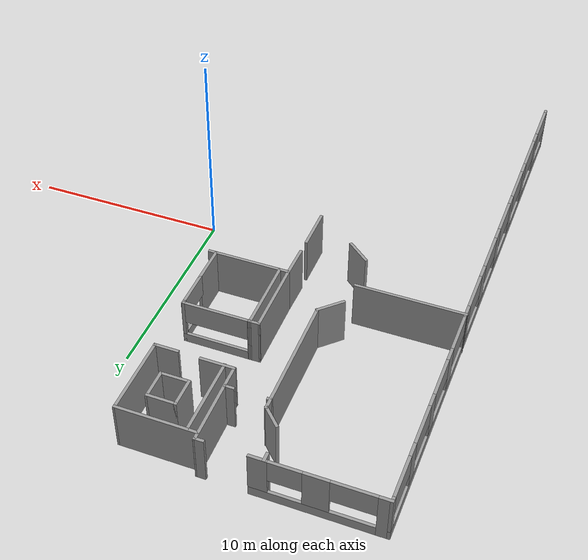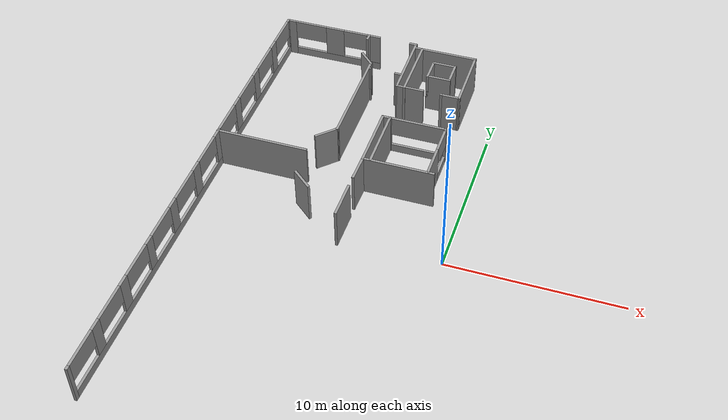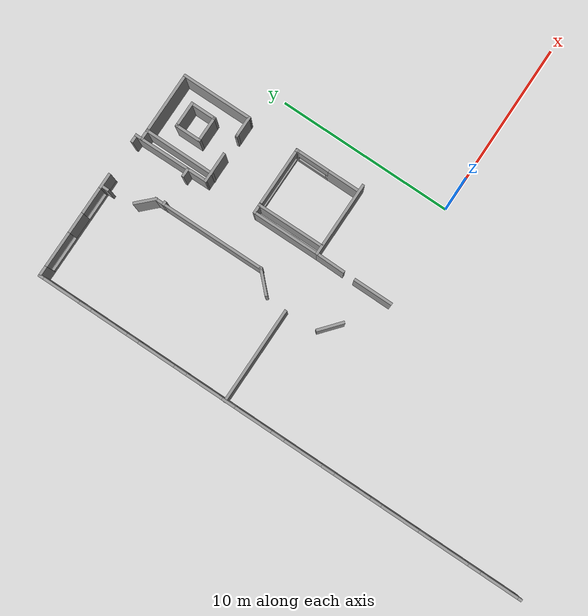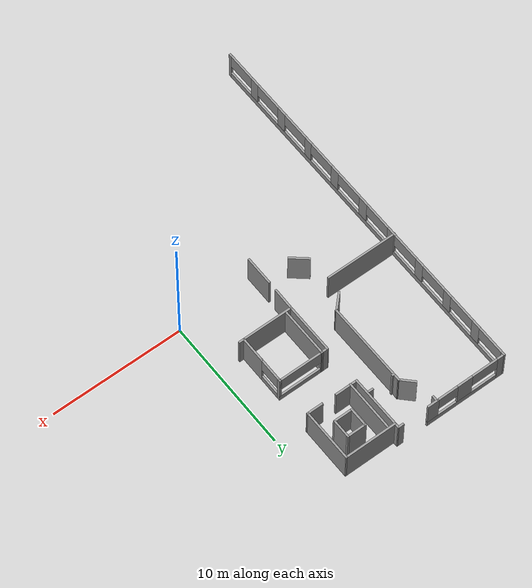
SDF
<sdf version="1.6">
 <model name="ca_vignal_1">
  <pose>-8.09627 -0.676503 0 0 -0 0</pose>
  <link name="Wall_0">
   <pose>-6.35164 1.29841 0 0 -0 1.5708</pose>
   <visual name="Wall_0_Visual_0">
    <pose>-14.2835 0 1.25 0 -0 0</pose>
    <geometry><box><size>0.235089 0.15 2.5</size></box></geometry>
    <material>
     <script><uri>file://media/materials/scripts/gazebo.material</uri><name>Gazebo/Grey</name></script>
     <ambient>1 1 1 1</ambient>
    </material>
   </visual>
   <collision name="Wall_0_Collision_0">
    <geometry><box><size>0.235089 0.15 2.5</size></box></geometry>
    <pose>-14.2835 0 1.25 0 -0 0</pose>
   </collision>
   <visual name="Wall_0_Visual_1">
    <pose>0.117544 0 0.25 0 -0 0</pose>
    <geometry><box><size>28.5671 0.15 0.5</size></box></geometry>
    <material>
     <script><uri>file://media/materials/scripts/gazebo.material</uri><name>Gazebo/Grey</name></script>
     <ambient>1 1 1 1</ambient>
    </material>
   </visual>
   <collision name="Wall_0_Collision_1">
    <geometry><box><size>28.5671 0.15 0.5</size></box></geometry>
    <pose>0.117544 0 0.25 0 -0 0</pose>
   </collision>
   <visual name="Wall_0_Visual_2">
    <pose>-11.5998 0 1.5 0 -0 0</pose>
    <geometry><box><size>0.716549 0.15 2</size></box></geometry>
    <material>
     <script><uri>file://media/materials/scripts/gazebo.material</uri><name>Gazebo/Grey</name></script>
     <ambient>1 1 1 1</ambient>
    </material>
   </visual>
   <collision name="Wall_0_Collision_2">
    <geometry><box><size>0.716549 0.15 2</size></box></geometry>
    <pose>-11.5998 0 1.5 0 -0 0</pose>
   </collision>
   <visual name="Wall_0_Visual_3">
    <pose>-8.68449 0 1.5 0 -0 0</pose>
    <geometry><box><size>0.738343 0.15 2</size></box></geometry>
    <material>
     <script><uri>file://media/materials/scripts/gazebo.material</uri><name>Gazebo/Grey</name></script>
     <ambient>1 1 1 1</ambient>
    </material>
   </visual>
   <collision name="Wall_0_Collision_3">
    <geometry><box><size>0.738343 0.15 2</size></box></geometry>
    <pose>-8.68449 0 1.5 0 -0 0</pose>
   </collision>
   <visual name="Wall_0_Visual_4">
    <pose>-5.79269 0 1.5 0 -0 0</pose>
    <geometry><box><size>0.646852 0.15 2</size></box></geometry>
    <material>
     <script><uri>file://media/materials/scripts/gazebo.material</uri><name>Gazebo/Grey</name></script>
     <ambient>1 1 1 1</ambient>
    </material>
   </visual>
   <collision name="Wall_0_Collision_4">
    <geometry><box><size>0.646852 0.15 2</size></box></geometry>
    <pose>-5.79269 0 1.5 0 -0 0</pose>
   </collision>
   <visual name="Wall_0_Visual_5">
    <pose>-2.9503 0 1.5 0 -0 0</pose>
    <geometry><box><size>0.744454 0.15 2</size></box></geometry>
    <material>
     <script><uri>file://media/materials/scripts/gazebo.material</uri><name>Gazebo/Grey</name></script>
     <ambient>1 1 1 1</ambient>
    </material>
   </visual>
   <collision name="Wall_0_Collision_5">
    <geometry><box><size>0.744454 0.15 2</size></box></geometry>
    <pose>-2.9503 0 1.5 0 -0 0</pose>
   </collision>
   <visual name="Wall_0_Visual_6">
    <pose>0.028378 0 1.5 0 -0 0</pose>
    <geometry><box><size>0.779514 0.15 2</size></box></geometry>
    <material>
     <script><uri>file://media/materials/scripts/gazebo.material</uri><name>Gazebo/Grey</name></script>
     <ambient>1 1 1 1</ambient>
    </material>
   </visual>
   <collision name="Wall_0_Collision_6">
    <geometry><box><size>0.779514 0.15 2</size></box></geometry>
    <pose>0.028378 0 1.5 0 -0 0</pose>
   </collision>
   <visual name="Wall_0_Visual_7">
    <pose>2.96332 0 1.5 0 -0 0</pose>
    <geometry><box><size>0.761928 0.15 2</size></box></geometry>
    <material>
     <script><uri>file://media/materials/scripts/gazebo.material</uri><name>Gazebo/Grey</name></script>
     <ambient>1 1 1 1</ambient>
    </material>
   </visual>
   <collision name="Wall_0_Collision_7">
    <geometry><box><size>0.761928 0.15 2</size></box></geometry>
    <pose>2.96332 0 1.5 0 -0 0</pose>
   </collision>
   <visual name="Wall_0_Visual_8">
    <pose>5.85759 0 1.5 0 -0 0</pose>
    <geometry><box><size>0.733132 0.15 2</size></box></geometry>
    <material>
     <script><uri>file://media/materials/scripts/gazebo.material</uri><name>Gazebo/Grey</name></script>
     <ambient>1 1 1 1</ambient>
    </material>
   </visual>
   <collision name="Wall_0_Collision_8">
    <geometry><box><size>0.733132 0.15 2</size></box></geometry>
    <pose>5.85759 0 1.5 0 -0 0</pose>
   </collision>
   <visual name="Wall_0_Visual_9">
    <pose>8.71919 0 1.5 0 -0 0</pose>
    <geometry><box><size>0.696864 0.15 2</size></box></geometry>
    <material>
     <script><uri>file://media/materials/scripts/gazebo.material</uri><name>Gazebo/Grey</name></script>
     <ambient>1 1 1 1</ambient>
    </material>
   </visual>
   <collision name="Wall_0_Collision_9">
    <geometry><box><size>0.696864 0.15 2</size></box></geometry>
    <pose>8.71919 0 1.5 0 -0 0</pose>
   </collision>
   <visual name="Wall_0_Visual_10">
    <pose>11.5805 0 1.5 0 -0 0</pose>
    <geometry><box><size>0.718517 0.15 2</size></box></geometry>
    <material>
     <script><uri>file://media/materials/scripts/gazebo.material</uri><name>Gazebo/Grey</name></script>
     <ambient>1 1 1 1</ambient>
    </material>
   </visual>
   <collision name="Wall_0_Collision_10">
    <geometry><box><size>0.718517 0.15 2</size></box></geometry>
    <pose>11.5805 0 1.5 0 -0 0</pose>
   </collision>
   <visual name="Wall_0_Visual_11">
    <pose>14.2472 0 1.5 0 -0 0</pose>
    <geometry><box><size>0.30779 0.15 2</size></box></geometry>
    <material>
     <script><uri>file://media/materials/scripts/gazebo.material</uri><name>Gazebo/Grey</name></script>
     <ambient>1 1 1 1</ambient>
    </material>
   </visual>
   <collision name="Wall_0_Collision_11">
    <geometry><box><size>0.30779 0.15 2</size></box></geometry>
    <pose>14.2472 0 1.5 0 -0 0</pose>
   </collision>
   <visual name="Wall_0_Visual_12">
    <pose>-13.062 0 1.9 0 -0 0</pose>
    <geometry><box><size>2.20795 0.15 1.2</size></box></geometry>
    <material>
     <script><uri>file://media/materials/scripts/gazebo.material</uri><name>Gazebo/Grey</name></script>
     <ambient>1 1 1 1</ambient>
    </material>
   </visual>
   <collision name="Wall_0_Collision_12">
    <geometry><box><size>2.20795 0.15 1.2</size></box></geometry>
    <pose>-13.062 0 1.9 0 -0 0</pose>
   </collision>
   <visual name="Wall_0_Visual_13">
    <pose>-10.1476 0 1.9 0 -0 0</pose>
    <geometry><box><size>2.18784 0.15 1.2</size></box></geometry>
    <material>
     <script><uri>file://media/materials/scripts/gazebo.material</uri><name>Gazebo/Grey</name></script>
     <ambient>1 1 1 1</ambient>
    </material>
   </visual>
   <collision name="Wall_0_Collision_13">
    <geometry><box><size>2.18784 0.15 1.2</size></box></geometry>
    <pose>-10.1476 0 1.9 0 -0 0</pose>
   </collision>
   <visual name="Wall_0_Visual_14">
    <pose>-7.21572 0 1.9 0 -0 0</pose>
    <geometry><box><size>2.19921 0.15 1.2</size></box></geometry>
    <material>
     <script><uri>file://media/materials/scripts/gazebo.material</uri><name>Gazebo/Grey</name></script>
     <ambient>1 1 1 1</ambient>
    </material>
   </visual>
   <collision name="Wall_0_Collision_14">
    <geometry><box><size>2.19921 0.15 1.2</size></box></geometry>
    <pose>-7.21572 0 1.9 0 -0 0</pose>
   </collision>
   <visual name="Wall_0_Visual_15">
    <pose>-4.3959 0 1.9 0 -0 0</pose>
    <geometry><box><size>2.14674 0.15 1.2</size></box></geometry>
    <material>
     <script><uri>file://media/materials/scripts/gazebo.material</uri><name>Gazebo/Grey</name></script>
     <ambient>1 1 1 1</ambient>
    </material>
   </visual>
   <collision name="Wall_0_Collision_15">
    <geometry><box><size>2.14674 0.15 1.2</size></box></geometry>
    <pose>-4.3959 0 1.9 0 -0 0</pose>
   </collision>
   <visual name="Wall_0_Visual_16">
    <pose>-1.46973 0 1.9 0 -0 0</pose>
    <geometry><box><size>2.2167 0.15 1.2</size></box></geometry>
    <material>
     <script><uri>file://media/materials/scripts/gazebo.material</uri><name>Gazebo/Grey</name></script>
     <ambient>1 1 1 1</ambient>
    </material>
   </visual>
   <collision name="Wall_0_Collision_16">
    <geometry><box><size>2.2167 0.15 1.2</size></box></geometry>
    <pose>-1.46973 0 1.9 0 -0 0</pose>
   </collision>
   <visual name="Wall_0_Visual_17">
    <pose>1.50025 0 1.9 0 -0 0</pose>
    <geometry><box><size>2.16423 0.15 1.2</size></box></geometry>
    <material>
     <script><uri>file://media/materials/scripts/gazebo.material</uri><name>Gazebo/Grey</name></script>
     <ambient>1 1 1 1</ambient>
    </material>
   </visual>
   <collision name="Wall_0_Collision_17">
    <geometry><box><size>2.16423 0.15 1.2</size></box></geometry>
    <pose>1.50025 0 1.9 0 -0 0</pose>
   </collision>
   <visual name="Wall_0_Visual_18">
    <pose>4.41765 0 1.9 0 -0 0</pose>
    <geometry><box><size>2.14674 0.15 1.2</size></box></geometry>
    <material>
     <script><uri>file://media/materials/scripts/gazebo.material</uri><name>Gazebo/Grey</name></script>
     <ambient>1 1 1 1</ambient>
    </material>
   </visual>
   <collision name="Wall_0_Collision_18">
    <geometry><box><size>2.14674 0.15 1.2</size></box></geometry>
    <pose>4.41765 0 1.9 0 -0 0</pose>
   </collision>
   <visual name="Wall_0_Visual_19">
    <pose>7.29746 0 1.9 0 -0 0</pose>
    <geometry><box><size>2.1466 0.15 1.2</size></box></geometry>
    <material>
     <script><uri>file://media/materials/scripts/gazebo.material</uri><name>Gazebo/Grey</name></script>
     <ambient>1 1 1 1</ambient>
    </material>
   </visual>
   <collision name="Wall_0_Collision_19">
    <geometry><box><size>2.1466 0.15 1.2</size></box></geometry>
    <pose>7.29746 0 1.9 0 -0 0</pose>
   </collision>
   <visual name="Wall_0_Visual_20">
    <pose>10.1444 0 1.9 0 -0 0</pose>
    <geometry><box><size>2.15358 0.15 1.2</size></box></geometry>
    <material>
     <script><uri>file://media/materials/scripts/gazebo.material</uri><name>Gazebo/Grey</name></script>
     <ambient>1 1 1 1</ambient>
    </material>
   </visual>
   <collision name="Wall_0_Collision_20">
    <geometry><box><size>2.15358 0.15 1.2</size></box></geometry>
    <pose>10.1444 0 1.9 0 -0 0</pose>
   </collision>
   <visual name="Wall_0_Visual_21">
    <pose>13.0165 0 1.9 0 -0 0</pose>
    <geometry><box><size>2.15358 0.15 1.2</size></box></geometry>
    <material>
     <script><uri>file://media/materials/scripts/gazebo.material</uri><name>Gazebo/Grey</name></script>
     <ambient>1 1 1 1</ambient>
    </material>
   </visual>
   <collision name="Wall_0_Collision_21">
    <geometry><box><size>2.15358 0.15 1.2</size></box></geometry>
    <pose>13.0165 0 1.9 0 -0 0</pose>
   </collision>
  </link>
  <link name="Wall_10">
   <collision name="Wall_10_Collision">
    <geometry><box><size>1.49437 0.15 2.5</size></box></geometry>
    <pose>0 0 1.25 0 -0 0</pose>
   </collision>
   <visual name="Wall_10_Visual">
    <pose>0 0 1.25 0 -0 0</pose>
    <geometry><box><size>1.49437 0.15 2.5</size></box></geometry>
    <material>
     <script><uri>file://media/materials/scripts/gazebo.material</uri><name>Gazebo/Grey</name></script>
     <ambient>1 1 1 1</ambient>
    </material>
   </visual>
   <pose>-0.384063 2.18943 0 0 -0 2.44358</pose>
  </link>
  <link name="Wall_18">
   <collision name="Wall_18_Collision">
    <geometry><box><size>0.5 0.15 2.5</size></box></geometry>
    <pose>0 0 1.25 0 -0 0</pose>
   </collision>
   <visual name="Wall_18_Visual">
    <pose>0 0 1.25 0 -0 0</pose>
    <geometry><box><size>0.5 0.15 2.5</size></box></geometry>
    <material>
     <script><uri>file://media/materials/scripts/gazebo.material</uri><name>Gazebo/Grey</name></script>
     <ambient>1 1 1 1</ambient>
    </material>
   </visual>
   <pose>1.99078 15.6193 0 0 -0 0</pose>
  </link>
  <link name="Wall_19">
   <collision name="Wall_19_Collision">
    <geometry><box><size>4.33031 0.15 2.5</size></box></geometry>
    <pose>0 0 1.25 0 -0 0</pose>
   </collision>
   <visual name="Wall_19_Visual">
    <pose>0 0 1.25 0 -0 0</pose>
    <geometry><box><size>4.33031 0.15 2.5</size></box></geometry>
    <material>
     <script><uri>file://media/materials/scripts/gazebo.material</uri><name>Gazebo/Grey</name></script>
     <ambient>1 1 1 1</ambient>
    </material>
   </visual>
   <pose>2.1855 13.5292 0 0 0 -1.56136</pose>
  </link>
  <link name="Wall_2">
   <pose>-3.30164 15.6245 0 0 -0 0</pose>
   <visual name="Wall_2_Visual_0">
    <pose>-2.81084 0 1.25 0 -0 0</pose>
    <geometry><box><size>0.628319 0.15 2.5</size></box></geometry>
    <material>
     <script><uri>file://media/materials/scripts/gazebo.material</uri><name>Gazebo/Grey</name></script>
     <ambient>1 1 1 1</ambient>
    </material>
   </visual>
   <collision name="Wall_2_Collision_0">
    <geometry><box><size>0.628319 0.15 2.5</size></box></geometry>
    <pose>-2.81084 0 1.25 0 -0 0</pose>
   </collision>
   <visual name="Wall_2_Visual_1">
    <pose>0.31416 0 0.25 0 -0 0</pose>
    <geometry><box><size>5.62168 0.15 0.5</size></box></geometry>
    <material>
     <script><uri>file://media/materials/scripts/gazebo.material</uri><name>Gazebo/Grey</name></script>
     <ambient>1 1 1 1</ambient>
    </material>
   </visual>
   <collision name="Wall_2_Collision_1">
    <geometry><box><size>5.62168 0.15 0.5</size></box></geometry>
    <pose>0.31416 0 0.25 0 -0 0</pose>
   </collision>
   <visual name="Wall_2_Visual_2">
    <pose>0.127976 0 1.5 0 -0 0</pose>
    <geometry><box><size>1.18537 0.15 2</size></box></geometry>
    <material>
     <script><uri>file://media/materials/scripts/gazebo.material</uri><name>Gazebo/Grey</name></script>
     <ambient>1 1 1 1</ambient>
    </material>
   </visual>
   <collision name="Wall_2_Collision_2">
    <geometry><box><size>1.18537 0.15 2</size></box></geometry>
    <pose>0.127976 0 1.5 0 -0 0</pose>
   </collision>
   <visual name="Wall_2_Visual_3">
    <pose>2.68462 0 1.5 0 -0 0</pose>
    <geometry><box><size>0.880764 0.15 2</size></box></geometry>
    <material>
     <script><uri>file://media/materials/scripts/gazebo.material</uri><name>Gazebo/Grey</name></script>
     <ambient>1 1 1 1</ambient>
    </material>
   </visual>
   <collision name="Wall_2_Collision_3">
    <geometry><box><size>0.880764 0.15 2</size></box></geometry>
    <pose>2.68462 0 1.5 0 -0 0</pose>
   </collision>
   <visual name="Wall_2_Visual_4">
    <pose>-1.4807 0 1.9 0 -0 0</pose>
    <geometry><box><size>2.03197 0.15 1.2</size></box></geometry>
    <material>
     <script><uri>file://media/materials/scripts/gazebo.material</uri><name>Gazebo/Grey</name></script>
     <ambient>1 1 1 1</ambient>
    </material>
   </visual>
   <collision name="Wall_2_Collision_4">
    <geometry><box><size>2.03197 0.15 1.2</size></box></geometry>
    <pose>-1.4807 0 1.9 0 -0 0</pose>
   </collision>
   <visual name="Wall_2_Visual_5">
    <pose>1.48245 0 1.9 0 -0 0</pose>
    <geometry><box><size>1.52357 0.15 1.2</size></box></geometry>
    <material>
     <script><uri>file://media/materials/scripts/gazebo.material</uri><name>Gazebo/Grey</name></script>
     <ambient>1 1 1 1</ambient>
    </material>
   </visual>
   <collision name="Wall_2_Collision_5">
    <geometry><box><size>1.52357 0.15 1.2</size></box></geometry>
    <pose>1.48245 0 1.9 0 -0 0</pose>
   </collision>
  </link>
  <link name="Wall_20">
   <collision name="Wall_20_Collision">
    <geometry><box><size>1.75 0.15 2.5</size></box></geometry>
    <pose>0 0 1.25 0 -0 0</pose>
   </collision>
   <visual name="Wall_20_Visual">
    <pose>0 0 1.25 0 -0 0</pose>
    <geometry><box><size>1.75 0.15 2.5</size></box></geometry>
    <material>
     <script><uri>file://media/materials/scripts/gazebo.material</uri><name>Gazebo/Grey</name></script>
     <ambient>1 1 1 1</ambient>
    </material>
   </visual>
   <pose>3.00523 11.4392 0 0 -0 0</pose>
  </link>
  <link name="Wall_22">
   <collision name="Wall_22_Collision">
    <geometry><box><size>4 0.15 2.5</size></box></geometry>
    <pose>0 0 1.25 0 -0 0</pose>
   </collision>
   <visual name="Wall_22_Visual">
    <pose>0 0 1.25 0 -0 0</pose>
    <geometry><box><size>4 0.15 2.5</size></box></geometry>
    <material>
     <script><uri>file://media/materials/scripts/gazebo.material</uri><name>Gazebo/Grey</name></script>
     <ambient>1 1 1 1</ambient>
    </material>
   </visual>
   <pose>4.12078 15.2971 0 0 -0 0</pose>
  </link>
  <link name="Wall_23">
   <collision name="Wall_23_Collision">
    <geometry><box><size>4.02639 0.15 2.5</size></box></geometry>
    <pose>0 0 1.25 0 -0 0</pose>
   </collision>
   <visual name="Wall_23_Visual">
    <pose>0 0 1.25 0 -0 0</pose>
    <geometry><box><size>4.02639 0.15 2.5</size></box></geometry>
    <material>
     <script><uri>file://media/materials/scripts/gazebo.material</uri><name>Gazebo/Grey</name></script>
     <ambient>1 1 1 1</ambient>
    </material>
   </visual>
   <pose>6.05235 13.359 0 0 0 -1.5674</pose>
  </link>
  <link name="Wall_24">
   <collision name="Wall_24_Collision">
    <geometry><box><size>1.25 0.15 2.5</size></box></geometry>
    <pose>0 0 1.25 0 -0 0</pose>
   </collision>
   <visual name="Wall_24_Visual">
    <pose>0 0 1.25 0 -0 0</pose>
    <geometry><box><size>1.25 0.15 2.5</size></box></geometry>
    <material>
     <script><uri>file://media/materials/scripts/gazebo.material</uri><name>Gazebo/Grey</name></script>
     <ambient>1 1 1 1</ambient>
    </material>
   </visual>
   <pose>5.50893 11.4208 0 0 -0 3.14159</pose>
  </link>
  <link name="Wall_25">
   <collision name="Wall_25_Collision">
    <geometry><box><size>0.15 0.15 2.5</size></box></geometry>
    <pose>0 0 1.25 0 -0 0</pose>
   </collision>
   <visual name="Wall_25_Visual">
    <pose>0 0 1.25 0 -0 0</pose>
    <geometry><box><size>0.15 0.15 2.5</size></box></geometry>
    <material>
     <script><uri>file://media/materials/scripts/gazebo.material</uri><name>Gazebo/Grey</name></script>
     <ambient>1 1 1 1</ambient>
    </material>
   </visual>
   <pose>4.95893 11.4208 0 0 -0 0</pose>
  </link>
  <link name="Wall_27">
   <collision name="Wall_27_Collision">
    <geometry><box><size>0.5 0.15 2.5</size></box></geometry>
    <pose>0 0 1.25 0 -0 0</pose>
   </collision>
   <visual name="Wall_27_Visual">
    <pose>0 0 1.25 0 -0 0</pose>
    <geometry><box><size>0.5 0.15 2.5</size></box></geometry>
    <material>
     <script><uri>file://media/materials/scripts/gazebo.material</uri><name>Gazebo/Grey</name></script>
     <ambient>1 1 1 1</ambient>
    </material>
   </visual>
   <pose>1.97078 12.5171 0 0 -0 0</pose>
  </link>
  <link name="Wall_30">
   <collision name="Wall_30_Collision">
    <geometry><box><size>4 0.15 2.5</size></box></geometry>
    <pose>0 0 1.25 0 -0 0</pose>
   </collision>
   <visual name="Wall_30_Visual">
    <pose>0 0 1.25 0 -0 0</pose>
    <geometry><box><size>4 0.15 2.5</size></box></geometry>
    <material>
     <script><uri>file://media/materials/scripts/gazebo.material</uri><name>Gazebo/Grey</name></script>
     <ambient>1 1 1 1</ambient>
    </material>
   </visual>
   <pose>2.67311 13.3434 0 0 0 -1.5708</pose>
  </link>
  <link name="Wall_35">
   <collision name="Wall_35_Collision">
    <geometry><box><size>1.5 0.15 2.5</size></box></geometry>
    <pose>0 0 1.25 0 -0 0</pose>
   </collision>
   <visual name="Wall_35_Visual">
    <pose>0 0 1.25 0 -0 0</pose>
    <geometry><box><size>1.5 0.15 2.5</size></box></geometry>
    <material>
     <script><uri>file://media/materials/scripts/gazebo.material</uri><name>Gazebo/Grey</name></script>
     <ambient>1 1 1 1</ambient>
    </material>
   </visual>
   <pose>4.38699 12.8619 0 0 -0 0</pose>
  </link>
  <link name="Wall_36">
   <collision name="Wall_36_Collision">
    <geometry><box><size>1.5 0.15 2.5</size></box></geometry>
    <pose>0 0 1.25 0 -0 0</pose>
   </collision>
   <visual name="Wall_36_Visual">
    <pose>0 0 1.25 0 -0 0</pose>
    <geometry><box><size>1.5 0.15 2.5</size></box></geometry>
    <material>
     <script><uri>file://media/materials/scripts/gazebo.material</uri><name>Gazebo/Grey</name></script>
     <ambient>1 1 1 1</ambient>
    </material>
   </visual>
   <pose>5.06198 13.5369 0 0 -0 1.5708</pose>
  </link>
  <link name="Wall_37">
   <collision name="Wall_37_Collision">
    <geometry><box><size>1.5 0.15 2.5</size></box></geometry>
    <pose>0 0 1.25 0 -0 0</pose>
   </collision>
   <visual name="Wall_37_Visual">
    <pose>0 0 1.25 0 -0 0</pose>
    <geometry><box><size>1.5 0.15 2.5</size></box></geometry>
    <material>
     <script><uri>file://media/materials/scripts/gazebo.material</uri><name>Gazebo/Grey</name></script>
     <ambient>1 1 1 1</ambient>
    </material>
   </visual>
   <pose>4.38699 14.2119 0 0 -0 3.14159</pose>
  </link>
  <link name="Wall_38">
   <collision name="Wall_38_Collision">
    <geometry><box><size>1.5 0.15 2.5</size></box></geometry>
    <pose>0 0 1.25 0 -0 0</pose>
   </collision>
   <visual name="Wall_38_Visual">
    <pose>0 0 1.25 0 -0 0</pose>
    <geometry><box><size>1.5 0.15 2.5</size></box></geometry>
    <material>
     <script><uri>file://media/materials/scripts/gazebo.material</uri><name>Gazebo/Grey</name></script>
     <ambient>1 1 1 1</ambient>
    </material>
   </visual>
   <pose>3.71198 13.5369 0 0 0 -1.5708</pose>
  </link>
  <link name="Wall_4">
   <collision name="Wall_4_Collision">
    <geometry><box><size>1.25 0.15 2.5</size></box></geometry>
    <pose>0 0 1.25 0 -0 0</pose>
   </collision>
   <visual name="Wall_4_Visual">
    <pose>0 0 1.25 0 -0 0</pose>
    <geometry><box><size>1.25 0.15 2.5</size></box></geometry>
    <material>
     <script><uri>file://media/materials/scripts/gazebo.material</uri><name>Gazebo/Grey</name></script>
     <ambient>1 1 1 1</ambient>
    </material>
   </visual>
   <pose>-0.335232 13.3814 0 0 0 -0.785398</pose>
  </link>
  <link name="Wall_40">
   <collision name="Wall_40_Collision">
    <geometry><box><size>0.25 0.15 2.5</size></box></geometry>
    <pose>0 0 1.25 0 -0 0</pose>
   </collision>
   <visual name="Wall_40_Visual">
    <pose>0 0 1.25 0 -0 0</pose>
    <geometry><box><size>0.25 0.15 2.5</size></box></geometry>
    <material>
     <script><uri>file://media/materials/scripts/gazebo.material</uri><name>Gazebo/Grey</name></script>
     <ambient>1 1 1 1</ambient>
    </material>
   </visual>
   <pose>0.104599 12.5173 0 0 -0 0</pose>
  </link>
  <link name="Wall_42">
   <collision name="Wall_42_Collision">
    <geometry><box><size>5.5 0.15 2.5</size></box></geometry>
    <pose>0 0 1.25 0 -0 0</pose>
   </collision>
   <visual name="Wall_42_Visual">
    <pose>0 0 1.25 0 -0 0</pose>
    <geometry><box><size>5.5 0.15 2.5</size></box></geometry>
    <material>
     <script><uri>file://media/materials/scripts/gazebo.material</uri><name>Gazebo/Grey</name></script>
     <ambient>1 1 1 1</ambient>
    </material>
   </visual>
   <pose>-3.69472 4.47149 0 0 -0 0</pose>
  </link>
  <link name="Wall_49">
   <collision name="Wall_49_Collision">
    <geometry><box><size>0.5 0.15 2.5</size></box></geometry>
    <pose>0 0 1.25 0 -0 0</pose>
   </collision>
   <visual name="Wall_49_Visual">
    <pose>0 0 1.25 0 -0 0</pose>
    <geometry><box><size>0.5 0.15 2.5</size></box></geometry>
    <material>
     <script><uri>file://media/materials/scripts/gazebo.material</uri><name>Gazebo/Grey</name></script>
     <ambient>1 1 1 1</ambient>
    </material>
   </visual>
   <pose>-0.910063 15.4437 0 0 0 -1.5708</pose>
  </link>
  <link name="Wall_5">
   <collision name="Wall_5_Collision">
    <geometry><box><size>6.45648 0.15 2.5</size></box></geometry>
    <pose>0 0 1.25 0 -0 0</pose>
   </collision>
   <visual name="Wall_5_Visual">
    <pose>0 0 1.25 0 -0 0</pose>
    <geometry><box><size>6.45648 0.15 2.5</size></box></geometry>
    <material>
     <script><uri>file://media/materials/scripts/gazebo.material</uri><name>Gazebo/Grey</name></script>
     <ambient>1 1 1 1</ambient>
    </material>
   </visual>
   <pose>0.072558 9.83935 0 0 0 -1.56481</pose>
  </link>
  <link name="Wall_51">
   <collision name="Wall_51_Collision">
    <geometry><box><size>4.25 0.15 2.5</size></box></geometry>
    <pose>0 0 1.25 0 -0 0</pose>
   </collision>
   <visual name="Wall_51_Visual">
    <pose>0 0 1.25 0 -0 0</pose>
    <geometry><box><size>4.25 0.15 2.5</size></box></geometry>
    <material>
     <script><uri>file://media/materials/scripts/gazebo.material</uri><name>Gazebo/Grey</name></script>
     <ambient>1 1 1 1</ambient>
    </material>
   </visual>
   <pose>4.31972 4.76695 0 0 -0 0</pose>
  </link>
  <link name="Wall_54">
   <collision name="Wall_54_Collision">
    <geometry><box><size>3.851 0.15 2.5</size></box></geometry>
    <pose>0 0 1.25 0 -0 0</pose>
   </collision>
   <visual name="Wall_54_Visual">
    <pose>0 0 1.25 0 -0 0</pose>
    <geometry><box><size>3.851 0.15 2.5</size></box></geometry>
    <material>
     <script><uri>file://media/materials/scripts/gazebo.material</uri><name>Gazebo/Grey</name></script>
     <ambient>1 1 1 1</ambient>
    </material>
   </visual>
   <pose>2.6998 6.66167 0 0 -0 1.5762</pose>
  </link>
  <link name="Wall_55">
   <collision name="Wall_55_Collision">
    <geometry><box><size>0.585889 0.15 2.5</size></box></geometry>
    <pose>0 0 1.25 0 -0 0</pose>
   </collision>
   <visual name="Wall_55_Visual">
    <pose>0 0 1.25 0 -0 0</pose>
    <geometry><box><size>0.585889 0.15 2.5</size></box></geometry>
    <material>
     <script><uri>file://media/materials/scripts/gazebo.material</uri><name>Gazebo/Grey</name></script>
     <ambient>1 1 1 1</ambient>
    </material>
   </visual>
   <pose>2.47189 8.50823 0 0 0 -3.12351</pose>
  </link>
  <link name="Wall_56">
   <collision name="Wall_56_Collision">
    <geometry><box><size>3.88734 0.15 2.5</size></box></geometry>
    <pose>0 0 1.25 0 -0 0</pose>
   </collision>
   <visual name="Wall_56_Visual">
    <pose>0 0 1.25 0 -0 0</pose>
    <geometry><box><size>3.88734 0.15 2.5</size></box></geometry>
    <material>
     <script><uri>file://media/materials/scripts/gazebo.material</uri><name>Gazebo/Grey</name></script>
     <ambient>1 1 1 1</ambient>
    </material>
   </visual>
   <pose>2.26185 6.63562 0 0 0 -1.56659</pose>
  </link>
  <link name="Wall_58">
   <pose>4.3648 8.51217 0 0 -0 0</pose>
   <visual name="Wall_58_Visual_0">
    <pose>-1.65572 0 1.25 0 -0 0</pose>
    <geometry><box><size>0.18855 0.15 2.5</size></box></geometry>
    <material>
     <script><uri>file://media/materials/scripts/gazebo.material</uri><name>Gazebo/Grey</name></script>
     <ambient>1 1 1 1</ambient>
    </material>
   </visual>
   <collision name="Wall_58_Collision_0">
    <geometry><box><size>0.18855 0.15 2.5</size></box></geometry>
    <pose>-1.65572 0 1.25 0 -0 0</pose>
   </collision>
   <visual name="Wall_58_Visual_1">
    <pose>0.094275 0 0.25 0 -0 0</pose>
    <geometry><box><size>3.31145 0.15 0.5</size></box></geometry>
    <material>
     <script><uri>file://media/materials/scripts/gazebo.material</uri><name>Gazebo/Grey</name></script>
     <ambient>1 1 1 1</ambient>
    </material>
   </visual>
   <collision name="Wall_58_Collision_1">
    <geometry><box><size>3.31145 0.15 0.5</size></box></geometry>
    <pose>0.094275 0 0.25 0 -0 0</pose>
   </collision>
   <visual name="Wall_58_Visual_2">
    <pose>1.66427 0 1.5 0 -0 0</pose>
    <geometry><box><size>0.17145 0.15 2</size></box></geometry>
    <material>
     <script><uri>file://media/materials/scripts/gazebo.material</uri><name>Gazebo/Grey</name></script>
     <ambient>1 1 1 1</ambient>
    </material>
   </visual>
   <collision name="Wall_58_Collision_2">
    <geometry><box><size>0.17145 0.15 2</size></box></geometry>
    <pose>1.66427 0 1.5 0 -0 0</pose>
   </collision>
   <visual name="Wall_58_Visual_3">
    <pose>0.00855 0 1.9 0 -0 0</pose>
    <geometry><box><size>3.14 0.15 1.2</size></box></geometry>
    <material>
     <script><uri>file://media/materials/scripts/gazebo.material</uri><name>Gazebo/Grey</name></script>
     <ambient>1 1 1 1</ambient>
    </material>
   </visual>
   <collision name="Wall_58_Collision_3">
    <geometry><box><size>3.14 0.15 1.2</size></box></geometry>
    <pose>0.00855 0 1.9 0 -0 0</pose>
   </collision>
  </link>
  <link name="Wall_59">
   <pose>6.0398 7.58717 0 0 0 -1.5708</pose>
   <visual name="Wall_59_Visual_0">
    <pose>-0.886716 0 1.25 0 -0 0</pose>
    <geometry><box><size>0.226567 0.15 2.5</size></box></geometry>
    <material>
     <script><uri>file://media/materials/scripts/gazebo.material</uri><name>Gazebo/Grey</name></script>
     <ambient>1 1 1 1</ambient>
    </material>
   </visual>
   <collision name="Wall_59_Collision_0">
    <geometry><box><size>0.226567 0.15 2.5</size></box></geometry>
    <pose>-0.886716 0 1.25 0 -0 0</pose>
   </collision>
   <visual name="Wall_59_Visual_1">
    <pose>0.113284 0 0.25 0 -0 0</pose>
    <geometry><box><size>1.77343 0.15 0.5</size></box></geometry>
    <material>
     <script><uri>file://media/materials/scripts/gazebo.material</uri><name>Gazebo/Grey</name></script>
     <ambient>1 1 1 1</ambient>
    </material>
   </visual>
   <collision name="Wall_59_Collision_1">
    <geometry><box><size>1.77343 0.15 0.5</size></box></geometry>
    <pose>0.113284 0 0.25 0 -0 0</pose>
   </collision>
   <visual name="Wall_59_Visual_2">
    <pose>0.113284 0 1.9 0 -0 0</pose>
    <geometry><box><size>1.77343 0.15 1.2</size></box></geometry>
    <material>
     <script><uri>file://media/materials/scripts/gazebo.material</uri><name>Gazebo/Grey</name></script>
     <ambient>1 1 1 1</ambient>
    </material>
   </visual>
   <collision name="Wall_59_Collision_2">
    <geometry><box><size>1.77343 0.15 1.2</size></box></geometry>
    <pose>0.113284 0 1.9 0 -0 0</pose>
   </collision>
  </link>
  <link name="Wall_6">
   <collision name="Wall_6_Collision">
    <geometry><box><size>1.5 0.15 2.5</size></box></geometry>
    <pose>0 0 1.25 0 -0 0</pose>
   </collision>
   <visual name="Wall_6_Visual">
    <pose>0 0 1.25 0 -0 0</pose>
    <geometry><box><size>1.5 0.15 2.5</size></box></geometry>
    <material>
     <script><uri>file://media/materials/scripts/gazebo.material</uri><name>Gazebo/Grey</name></script>
     <ambient>1 1 1 1</ambient>
    </material>
   </visual>
   <pose>-0.385857 6.20886 0 0 0 -2.35619</pose>
  </link>
  <link name="Wall_60">
   <collision name="Wall_60_Collision">
    <geometry><box><size>2 0.15 2.5</size></box></geometry>
    <pose>0 0 1.25 0 -0 0</pose>
   </collision>
   <visual name="Wall_60_Visual">
    <pose>0 0 1.25 0 -0 0</pose>
    <geometry><box><size>2 0.15 2.5</size></box></geometry>
    <material>
     <script><uri>file://media/materials/scripts/gazebo.material</uri><name>Gazebo/Grey</name></script>
     <ambient>1 1 1 1</ambient>
    </material>
   </visual>
   <pose>6.0398 5.73717 0 0 0 -1.5708</pose>
  </link>
  <link name="Wall_82">
   <collision name="Wall_82_Collision">
    <geometry><box><size>2.25 0.15 2.5</size></box></geometry>
    <pose>0 0 1.25 0 -0 0</pose>
   </collision>
   <visual name="Wall_82_Visual">
    <pose>0 0 1.25 0 -0 0</pose>
    <geometry><box><size>2.25 0.15 2.5</size></box></geometry>
    <material>
     <script><uri>file://media/materials/scripts/gazebo.material</uri><name>Gazebo/Grey</name></script>
     <ambient>1 1 1 1</ambient>
    </material>
   </visual>
   <pose>2.23077 1.37471 0 0 0 -1.5708</pose>
  </link>
  <link name="Wall_84">
   <collision name="Wall_84_Collision">
    <geometry><box><size>1.72888 0.15 2.5</size></box></geometry>
    <pose>0 0 1.25 0 -0 0</pose>
   </collision>
   <visual name="Wall_84_Visual">
    <pose>0 0 1.25 0 -0 0</pose>
    <geometry><box><size>1.72888 0.15 2.5</size></box></geometry>
    <material>
     <script><uri>file://media/materials/scripts/gazebo.material</uri><name>Gazebo/Grey</name></script>
     <ambient>1 1 1 1</ambient>
    </material>
   </visual>
   <pose>2.25629 3.97763 0 0 -0 1.55378</pose>
  </link>
  <static>1</static>
 </model>
</sdf>
